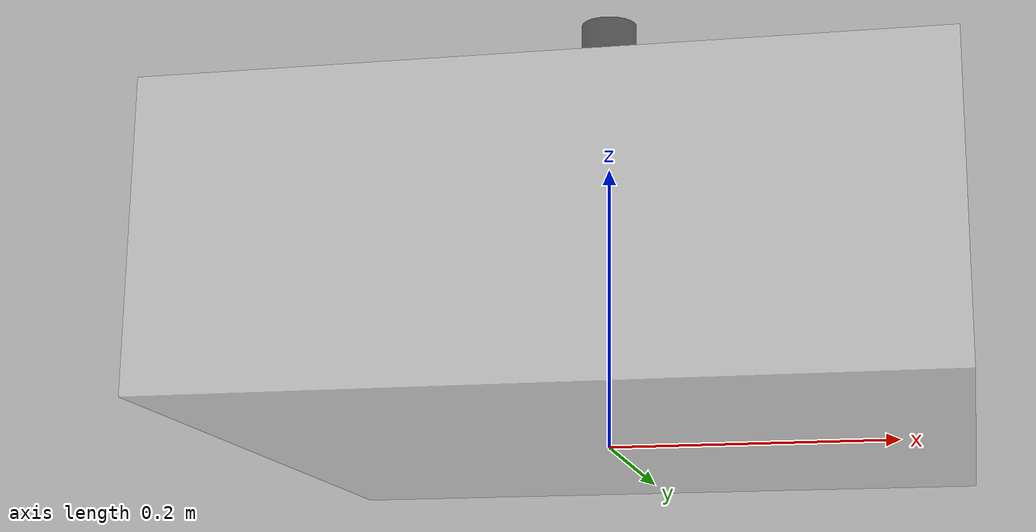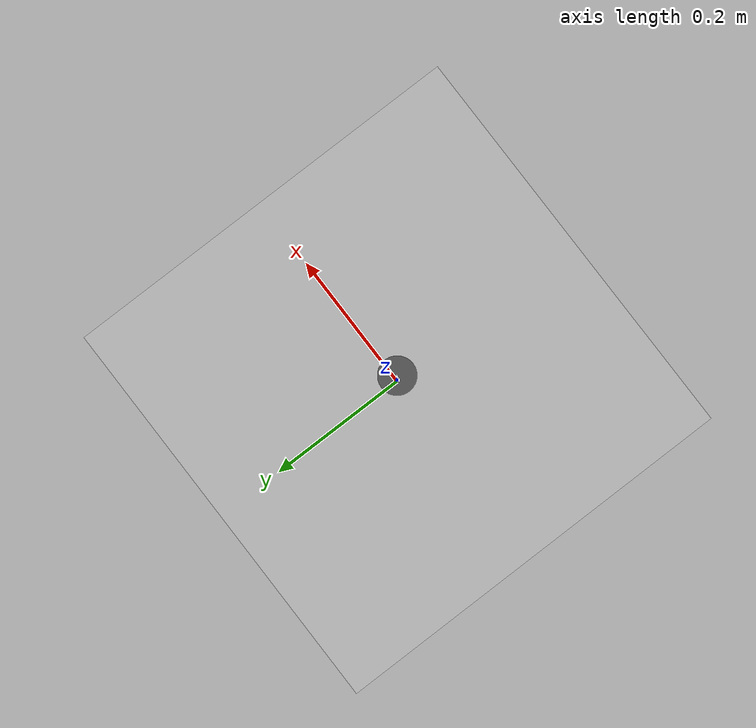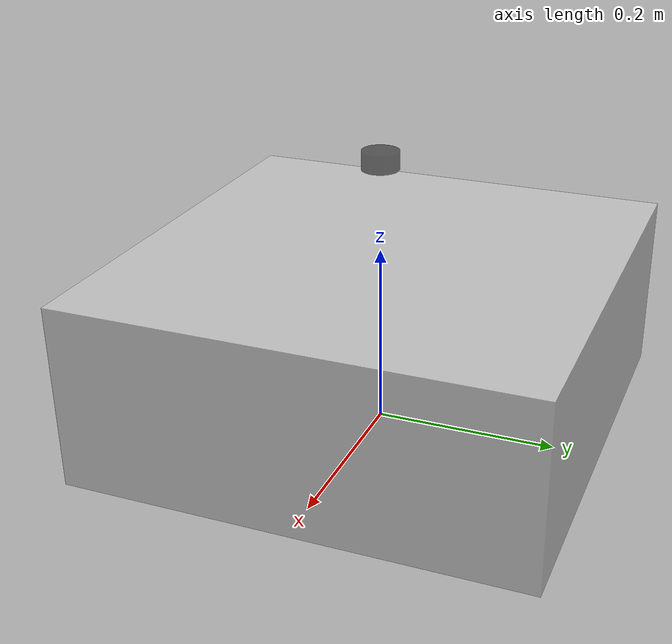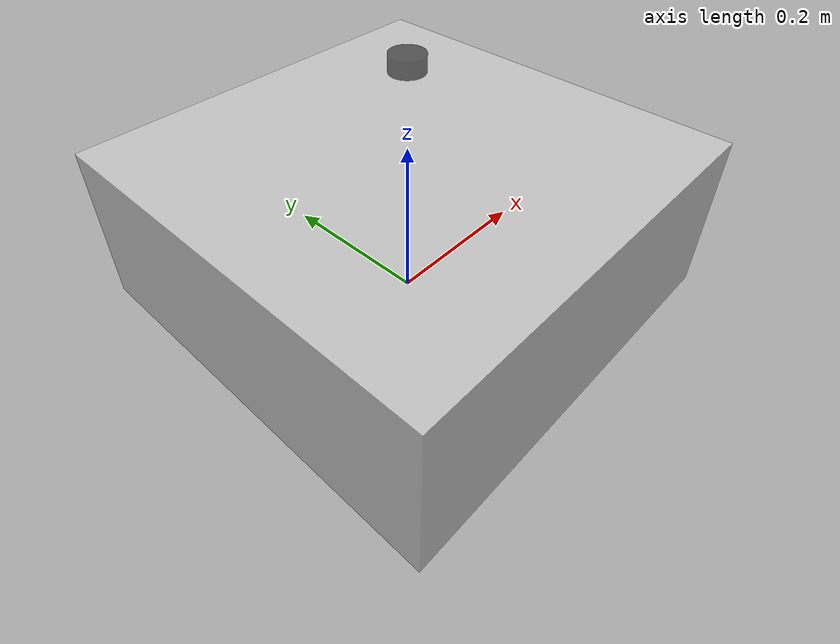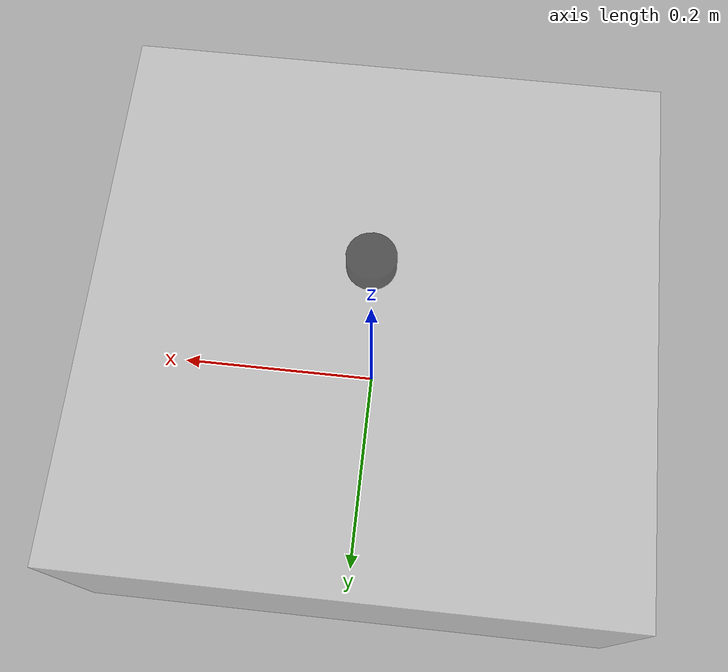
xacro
<?xml version="1.0"?>
<robot name="engineer" xmlns:xacro="http://wiki.ros.org/xacro">
    <!-- 由张荣开创建 -->
    <!-- 存放小车tf坐标 -->

    <!-- ########################### 一、全局参数定义区 ########################### -->
    <xacro:property name="base_height" value="0.2" />      <!-- 底盘（的垂直高度（单位：米）-->
    <xacro:property name="base_length" value="0.5" />     <!-- 底盘的长度（单位：米）-->
    <xacro:property name="base_width" value="0.5" />      <!-- 底盘的宽度（单位：米）-->
    <xacro:property name="base_footprint_height" value="0.1" />  <!-- base_footprint（地面参考点）到base_link（底盘）的垂直距离（z轴偏移） -->
    <xacro:property name="livox_height" value="0.2" />   <!-- mid360_imu_link的安装高度 -->

    <xacro:macro name="material" params="name rgba">
        <material name="${name}">
            <color rgba="${rgba}" />
        </material>
    </xacro:macro>

    <xacro:material name="iron" rgba="0.8 0.8 0.8 0.8" />        <!-- 材料名：iron（金属灰） -->
    <xacro:material name="black" rgba="0.0 0.0 0.0 0.8" />       <!-- 材料名：black（纯黑） -->
    <xacro:material name="trans_black" rgba="0.0 0.0 0.0 0.5" /> <!-- 材料名：trans_black（半透黑）-->

    <xacro:macro name="fixed_joint" params="name parent child xyz rpy">
        <joint name="${name}" type="fixed">
            <origin xyz="${xyz}" rpy="${rpy}"/>
            <parent link="${parent}"/>
            <child link="${child}"/>
        </joint>
    </xacro:macro>

    <link name="base_footprint" />

    <link name="base_link">
        <visual>
            <origin xyz="0 0 0.0" rpy="0 0 0" />
            <geometry>
                <box size="${base_length} ${base_width} ${base_height}" />
            </geometry>
            <material name="iron" />
        </visual>
    </link>

    <link name="livox_frame">
        <visual>
            <origin xyz="0 0 0" rpy="0 0 0" />
            <geometry>
                <cylinder length="0.02" radius="0.02" />
            </geometry>
            <material name="trans_black" />
        </visual>
    </link>

    <xacro:fixed_joint
        name="base_joint"
        parent="base_footprint"
        child="base_link"
        xyz="0.0 0.0 ${base_footprint_height}"
        rpy="0 0 0"
    />

    <xacro:fixed_joint
        name="lasr_joint"
        parent="base_link"
        child="livox_frame"
        xyz="0 0 ${livox_height}"
        rpy="0 0 0"
    />

</robot>
